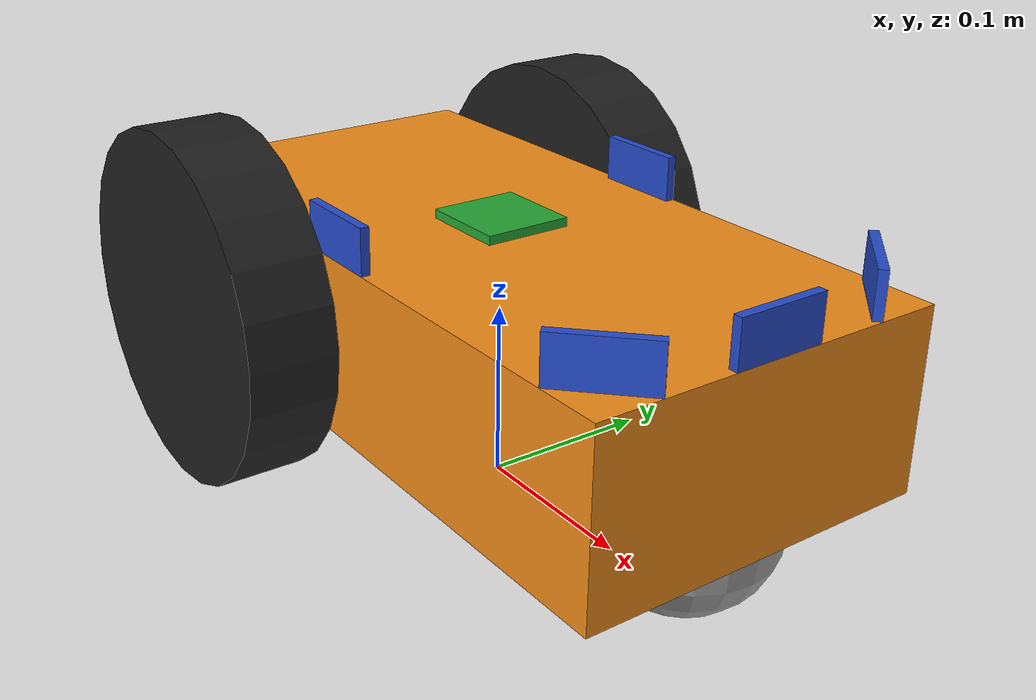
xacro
<?xml version="1.0"?>

<robot name="mymobibot" xmlns:xacro="http://www.ros.org/wiki/xacro">

  <xacro:property name="PI" value="3.1415926535897931"/>
  <xacro:property name="SQRT_2" value="1.41421356237"/>

  <xacro:property name="chassisHeight" value="0.1"/>
  <xacro:property name="chassisLength" value="0.4"/>
  <xacro:property name="chassisWidth" value="0.2"/>
  <xacro:property name="chassisMass" value="50"/>

  <xacro:property name="casterRadius" value="0.05"/>
  <xacro:property name="casterMass" value="5"/>

  <xacro:property name="wheelWidth" value="0.05"/>
  <xacro:property name="wheelRadius" value="0.1"/>
  <xacro:property name="wheelPos" value="0.2"/>
  <xacro:property name="wheelMass" value="5"/>

  <xacro:property name="imuHeight" value="0.005"/>
  <xacro:property name="imuSize" value="0.05"/>
  <xacro:property name="imuMass" value="0.01"/>

  <xacro:property name="sonarHeight" value="0.025"/>
  <xacro:property name="sonarThickness" value="0.005"/>
  <xacro:property name="sonarWidth" value="0.05"/>
  <xacro:property name="sonarMass" value="0.02"/>

  <xacro:include filename="$(find mymobibot_description)/urdf/mymobibot.gazebo" />
  <xacro:include filename="$(find mymobibot_description)/urdf/materials.xacro" />
  <xacro:include filename="$(find mymobibot_description)/urdf/macros.xacro" />

  <link name="footprint" />

  <joint name="base_joint" type="fixed">
    <parent link="footprint"/>
    <child link="chassis"/>
  </joint>

  <link name="chassis">
    <collision>
      <origin xyz="0 0 ${wheelRadius}" rpy="0 0 0"/>
      <geometry>
	<box size="${chassisLength} ${chassisWidth} ${chassisHeight}"/>
      </geometry>
    </collision>

    <visual>
      <origin xyz="0 0 ${wheelRadius}" rpy="0 0 0"/>
      <geometry>
	<box size="${chassisLength} ${chassisWidth} ${chassisHeight}"/>
      </geometry>
      <material name="orange"/>
    </visual>

    <inertial>
      <origin xyz="0 0 ${wheelRadius}" rpy="0 0 0"/>
      <mass value="${chassisMass}"/>
      <xacro:box_inertia m="${chassisMass}" x="${chassisLength}" y="${chassisWidth}" z="${chassisHeight}"/>
    </inertial>
  </link>

  <joint name="fixed" type="fixed">
    <parent link="chassis"/>
    <child link="caster_wheel"/>
  </joint>

  <link name="caster_wheel">

    <collision>
      <origin xyz="${-casterRadius+chassisLength/2} 0 ${casterRadius-chassisHeight+wheelRadius}" rpy="0 0 0"/>
      <geometry>
	<sphere radius="${casterRadius}"/>
      </geometry>
    </collision>

    <visual>
      <origin xyz="${-casterRadius+chassisLength/2} 0 ${casterRadius-chassisHeight+wheelRadius}" rpy="0 0 0"/>
      <geometry>
	<sphere radius="${casterRadius}"/>
      </geometry>
    </visual>

    <inertial>
      <origin xyz="${-casterRadius+chassisLength/2} 0 ${casterRadius-chassisHeight+wheelRadius}" rpy="0 0 0"/>
      <mass value="${casterMass}"/>
      <xacro:sphere_inertia m="${casterMass}" r="${casterRadius}"/>
    </inertial>
  </link>

  <xacro:wheel lr="left" tY="-1"/>
  <xacro:wheel lr="right" tY="1"/>

  <joint name="imu_joint" type="fixed">
    <!--axis xyz="0 1 0" /-->
    <origin xyz="0 0 ${wheelRadius/2+chassisHeight+imuHeight/2}" rpy="0 0 0"/>
    <parent link="chassis"/>
    <child link="imu_link"/>
  </joint>

  <link name="imu_link">
    <collision>
      <origin xyz="0 0 0" rpy="0 0 0"/>
      <geometry>
        <box size="${imuSize} ${imuSize} ${imuHeight}"/>
      </geometry>
    </collision>

    <visual>
      <origin xyz="0 0 0" rpy="0 0 0"/>
      <geometry>
        <box size="${imuSize} ${imuSize} ${imuHeight}"/>
      </geometry>
      <material name="green"/>
    </visual>

    <inertial>
      <mass value="${imuMass}" />
      <origin xyz="0 0 0" rpy="0 0 0"/>
      <xacro:box_inertia m="${imuMass}" x="${imuSize}" y="${imuSize}" z="${imuHeight}" />
    </inertial>
  </link>

  <joint name="sonar_front_joint" type="fixed">
    <!--axis xyz="0 1 0" /-->
    <origin xyz="${chassisLength/2-sonarThickness/2} 0 ${wheelRadius/2+chassisHeight+sonarHeight/2}" rpy="0 0 0"/>
    <parent link="chassis"/>
    <child link="sonar_front_link"/>
  </joint>

  <link name="sonar_front_link">
    <collision>
      <origin xyz="0 0 0" rpy="0 0 0"/>
      <geometry>
        <box size="${sonarThickness} ${sonarWidth} ${sonarHeight}"/>
      </geometry>
    </collision>

    <visual>
      <origin xyz="0 0 0" rpy="0 0 0"/>
      <geometry>
        <box size="${sonarThickness} ${sonarWidth} ${sonarHeight}"/>
      </geometry>
      <material name="blue"/>
    </visual>

    <inertial>
      <mass value="${sonarMass}" />
      <origin xyz="0 0 0" rpy="0 0 0"/>
      <xacro:box_inertia m="${sonarMass}" x="${sonarThickness}" y="${sonarWidth}" z="${sonarHeight}" />
    </inertial>
  </link>

  <joint name="sonar_left_joint" type="fixed">
    <!--axis xyz="0 1 0" /-->
    <origin xyz="0 ${chassisWidth/2-sonarThickness/2} ${wheelRadius/2+chassisHeight+sonarHeight/2}" rpy="0 0 ${PI/2}"/>
    <parent link="chassis"/>
    <child link="sonar_left_link"/>
  </joint>

  <link name="sonar_left_link">
    <collision>
      <origin xyz="0 0 0" rpy="0 0 0"/>
      <geometry>
        <box size="${sonarThickness} ${sonarWidth} ${sonarHeight}"/>
      </geometry>
    </collision>

    <visual>
      <origin xyz="0 0 0" rpy="0 0 0"/>
      <geometry>
        <box size="${sonarThickness} ${sonarWidth} ${sonarHeight}"/>
      </geometry>
      <material name="blue"/>
    </visual>

    <inertial>
      <mass value="${sonarMass}" />
      <origin xyz="0 0 0" rpy="0 0 0"/>
      <xacro:box_inertia m="${sonarMass}" x="${sonarThickness}" y="${sonarWidth}" z="${sonarHeight}" />
    </inertial>
  </link>

  <joint name="sonar_right_joint" type="fixed">
    <!--axis xyz="0 1 0" /-->
    <origin xyz="0 ${-chassisWidth/2+sonarThickness/2} ${wheelRadius/2+chassisHeight+sonarHeight/2}" rpy="0 0 ${-PI/2}"/>
    <parent link="chassis"/>
    <child link="sonar_right_link"/>
  </joint>

  <link name="sonar_right_link">
    <collision>
      <origin xyz="0 0 0" rpy="0 0 0"/>
      <geometry>
        <box size="${sonarThickness} ${sonarWidth} ${sonarHeight}"/>
      </geometry>
    </collision>

    <visual>
      <origin xyz="0 0 0" rpy="0 0 0"/>
      <geometry>
        <box size="${sonarThickness} ${sonarWidth} ${sonarHeight}"/>
      </geometry>
      <material name="blue"/>
    </visual>

    <inertial>
      <mass value="${sonarMass}" />
      <origin xyz="0 0 0" rpy="0 0 0"/>
      <xacro:box_inertia m="${sonarMass}" x="${sonarThickness}" y="${sonarWidth}" z="${sonarHeight}" />
    </inertial>
  </link>

  <joint name="sonar_frontleft_joint" type="fixed">
    <!--axis xyz="0 1 0" /-->
    <origin xyz="${chassisLength/2-(sonarWidth/2)*(SQRT_2/2)-(sonarThickness/2)*(SQRT_2/2)} ${chassisWidth/2-(sonarWidth/2)*(SQRT_2/2)-(sonarThickness/2)*(SQRT_2/2)} ${wheelRadius/2+chassisHeight+sonarHeight/2}" rpy="0 0 ${PI/4}"/>
    <parent link="chassis"/>
    <child link="sonar_frontleft_link"/>
  </joint>

  <link name="sonar_frontleft_link">
    <collision>
      <origin xyz="0 0 0" rpy="0 0 0"/>
      <geometry>
        <box size="${sonarThickness} ${sonarWidth} ${sonarHeight}"/>
      </geometry>
    </collision>

    <visual>
      <origin xyz="0 0 0" rpy="0 0 0"/>
      <geometry>
        <box size="${sonarThickness} ${sonarWidth} ${sonarHeight}"/>
      </geometry>
      <material name="blue"/>
    </visual>

    <inertial>
      <mass value="${sonarMass}" />
      <origin xyz="0 0 0" rpy="0 0 0"/>
      <xacro:box_inertia m="${sonarMass}" x="${sonarThickness}" y="${sonarWidth}" z="${sonarHeight}" />
    </inertial>
  </link>

  <joint name="sonar_frontright_joint" type="fixed">
    <!--axis xyz="0 1 0" /-->
    <origin xyz="${chassisLength/2-(sonarWidth/2)*(SQRT_2/2)-(sonarThickness/2)*(SQRT_2/2)} ${-chassisWidth/2+(sonarWidth/2)*(SQRT_2/2)+(sonarThickness/2)*(SQRT_2/2)} ${wheelRadius/2+chassisHeight+sonarHeight/2}" rpy="0 0 ${-PI/4}"/>
    <parent link="chassis"/>
    <child link="sonar_frontright_link"/>
  </joint>

  <link name="sonar_frontright_link">
    <collision>
      <origin xyz="0 0 0" rpy="0 0 0"/>
      <geometry>
        <box size="${sonarThickness} ${sonarWidth} ${sonarHeight}"/>
      </geometry>
    </collision>

    <visual>
      <origin xyz="0 0 0" rpy="0 0 0"/>
      <geometry>
        <box size="${sonarThickness} ${sonarWidth} ${sonarHeight}"/>
      </geometry>
      <material name="blue"/>
    </visual>

    <inertial>
      <mass value="${sonarMass}" />
      <origin xyz="0 0 0" rpy="0 0 0"/>
      <xacro:box_inertia m="${sonarMass}" x="${sonarThickness}" y="${sonarWidth}" z="${sonarHeight}" />
    </inertial>
  </link>

</robot>

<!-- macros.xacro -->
<robot xmlns:xacro="http://www.ros.org/wiki/xacro">

     <xacro:macro name="cylinder_inertia" params="m r h">
        <inertia  ixx="${m*(3*r*r+h*h)/12}" ixy = "0" ixz = "0"
                  iyy="${m*(3*r*r+h*h)/12}" iyz = "0"
                  izz="${m*r*r/2}" />
      </xacro:macro>

      <xacro:macro name="box_inertia" params="m x y z">
        <inertia  ixx="${m*(y*y+z*z)/12}" ixy = "0" ixz = "0"
                  iyy="${m*(x*x+z*z)/12}" iyz = "0"
                  izz="${m*(x*x+z*z)/12}" />
      </xacro:macro>

      <xacro:macro name="sphere_inertia" params="m r">
        <inertia  ixx="${2*m*r*r/5}" ixy = "0" ixz = "0"
                  iyy="${2*m*r*r/5}" iyz = "0"
                  izz="${2*m*r*r/5}" />
      </xacro:macro>

     <xacro:macro name="wheel" params="lr tY">

       <link name="${lr}_wheel">
        <collision>
          <origin xyz="0 0 0" rpy="0 ${PI/2} ${PI/2}" />
          <geometry>
           <cylinder length="${wheelWidth}" radius="${wheelRadius}"/>
          </geometry>
        </collision>

        <visual>
          <origin xyz="0 0 0" rpy="0 ${PI/2} ${PI/2}" />
          <geometry>
           <cylinder length="${wheelWidth}" radius="${wheelRadius}"/>
          </geometry>
          <material name="black"/>
        </visual>

        <inertial>
          <origin xyz="0 0 0" rpy="0 ${PI/2} ${PI/2}" />
          <mass value="${wheelMass}"/>
          <xacro:cylinder_inertia m="${wheelMass}" r="${wheelRadius}" h="${wheelWidth}"/>
        </inertial>
       </link>

        <gazebo reference="${lr}_wheel">
          <mu1 value="1.0"/>
          <mu2 value="1.0"/>
          <kp  value="10000000.0" />
          <kd  value="1.0" />
          <fdir1 value="1 0 0"/>
          <material>Gazebo/Black</material>
        </gazebo>

       <joint name="${lr}_wheel_hinge" type="continuous">
          <parent link="chassis"/>
          <child link="${lr}_wheel"/>
          <origin xyz="${-wheelPos+chassisLength/4} ${tY*wheelWidth/2+tY*chassisWidth/2} ${wheelRadius}" rpy="0 0 0" />
          <axis xyz="0 1 0" rpy="0 0 0" />
          <limit effort="100" velocity="100"/>
          <joint_properties damping="0.0" friction="0.0"/>
        </joint>

      <transmission name="${lr}_trans">
        <type>transmission_interface/SimpleTransmission</type>
        <joint name="${lr}_wheel_hinge">
          <hardwareInterface>hardware_interface/EffortJointInterface</hardwareInterface>
        </joint>
        <actuator name="${lr}Motor">
          <hardwareInterface>EffortJointInterface</hardwareInterface>
          <mechanicalReduction>10</mechanicalReduction>
        </actuator>
      </transmission>

     </xacro:macro>
</robot>
